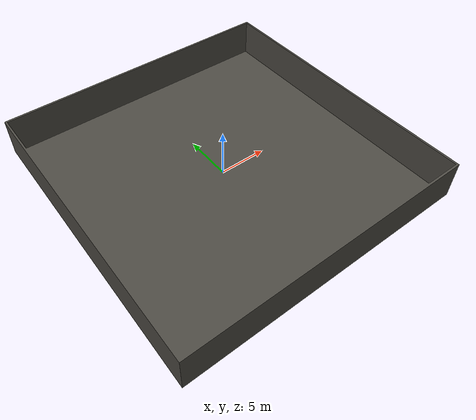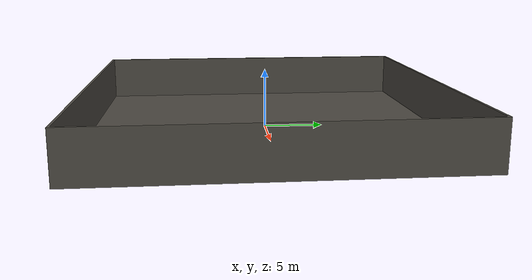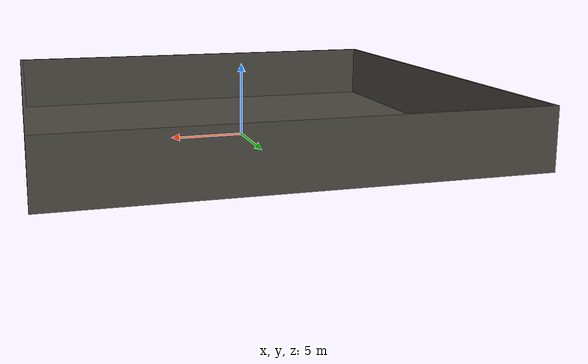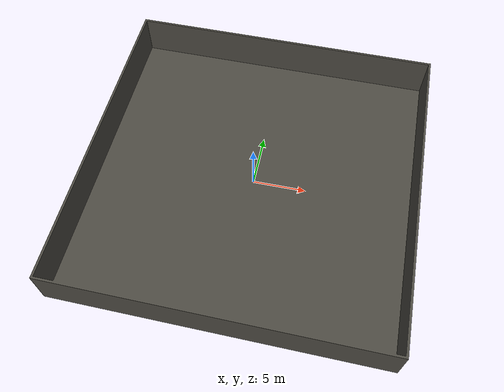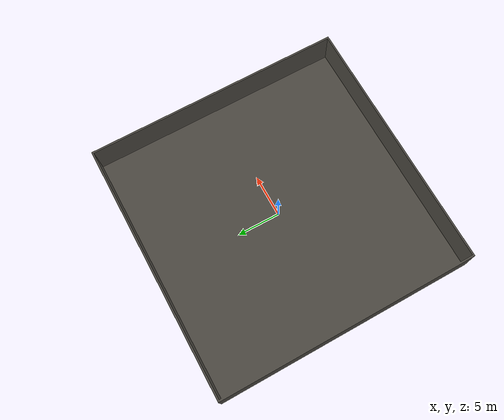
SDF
<?xml version="1.0" ?>
<!-- Floor model: 30 m x 30 m warehouse room. -->
<sdf version="1.9">
  <model name="floor">
    <static>true</static>
    <link name="floor">
      <visual name="floor_visual">
        <pose>0 0 0 0 0 0</pose>
        <geometry>
          <mesh><uri>meshes/floor.stl</uri></mesh>
        </geometry>
        <material>
          <ambient>0.301961 0.290196 0.262745 1</ambient>
          <diffuse>0.301961 0.290196 0.262745 1</diffuse>
        </material>
      </visual>
      <collision name="floor_collision">
        <pose>0 0 -0.025 0 0 0</pose>
        <geometry>
          <box>
            <size>30.0 30.0 0.05</size>
          </box>
        </geometry>
      </collision>
      <collision name="wall_north_collision">
        <pose>0 15.0 2.0 0 0 0</pose>
        <geometry>
          <box>
            <size>30.0 0.10 4.0</size>
          </box>
        </geometry>
      </collision>
      <collision name="wall_south_collision">
        <pose>0 -15.0 2.0 0 0 0</pose>
        <geometry>
          <box>
            <size>30.0 0.10 4.0</size>
          </box>
        </geometry>
      </collision>
      <collision name="wall_east_collision">
        <pose>15.0 0 2.0 0 0 0</pose>
        <geometry>
          <box>
            <size>0.10 30.0 4.0</size>
          </box>
        </geometry>
      </collision>
      <collision name="wall_west_collision">
        <pose>-15.0 0 2.0 0 0 0</pose>
        <geometry>
          <box>
            <size>0.10 30.0 4.0</size>
          </box>
        </geometry>
      </collision>
    </link>
  </model>
</sdf>
